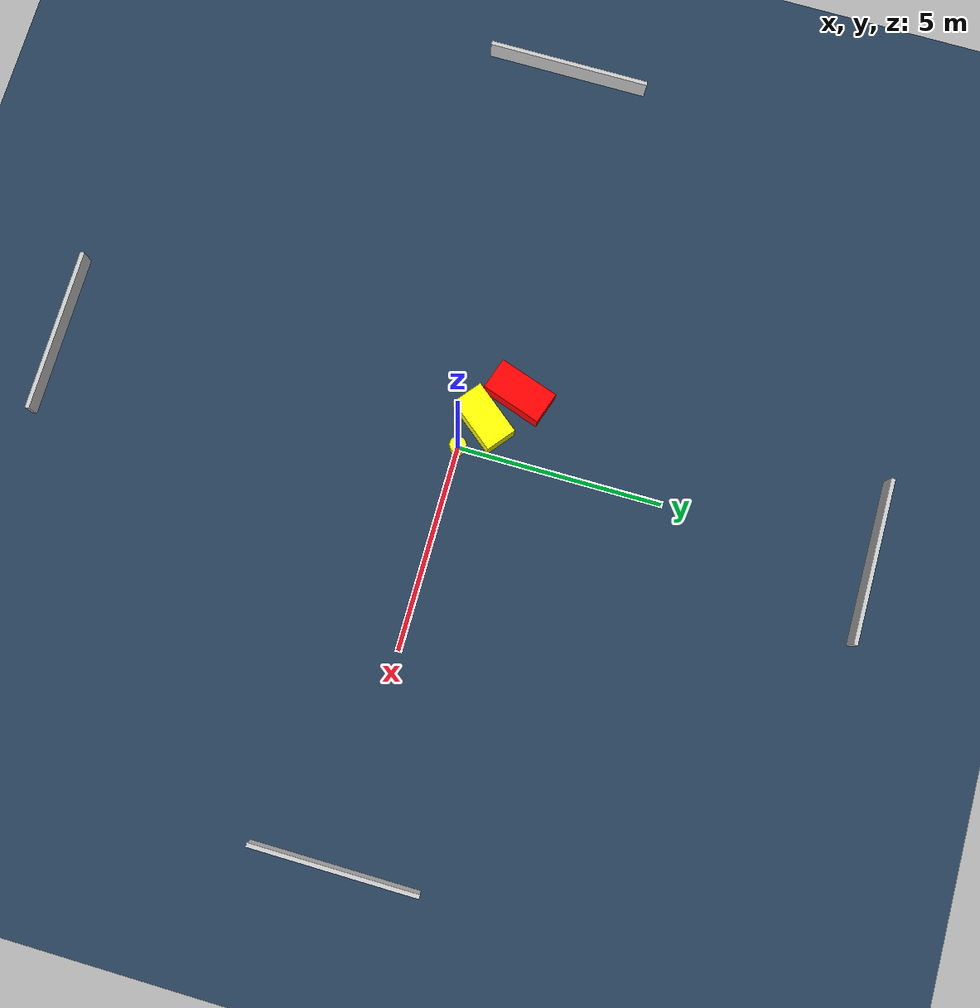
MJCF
<?xml version="1.0" ?>
<mujoco model="generated_environment">
  <option timestep="0.01" integrator="RK4" cone="elliptic"/>
  <default>
    <geom density="1"/>
  </default>
  <asset>
    <texture builtin="gradient" height="3072" name="skybox" rgb1="0.3 0.5 0.7" rgb2="0 0 0" type="skybox" width="512"/>
    <texture builtin="checker" height="300" name="groundplane" rgb1="0.2 0.3 0.4" rgb2="0.1 0.2 0.3" type="2d" width="300"/>
    <material name="groundplane" reflectance="0.2" texrepeat="5 5" texture="groundplane"/>
  </asset>
  <worldbody>
    <light dir="0 0 -1" directional="true" pos="0 0 1.5"/>
    <geom condim="3" friction="0.5 0.005 0.001" material="groundplane" name="floor" pos="0 0 0" size="0 0 0.05" type="plane"/>
    <body name="walls">
      <geom name="wall_1" condim="4" pos="-10.0 0.0 0.3" rgba="0.800000011920929 0.800000011920929 0.800000011920929 1.0" size="0.05 2.0 0.3" type="box"/>
      <geom name="wall_2" condim="4" pos="10.0 0.0 0.3" rgba="0.800000011920929 0.800000011920929 0.800000011920929 1.0" size="0.05 2.0 0.3" type="box"/>
      <geom name="wall_3" condim="4" pos="0.0 -10.0 0.3" rgba="0.800000011920929 0.800000011920929 0.800000011920929 1.0" size="2.0 0.05 0.3" type="box"/>
      <geom name="wall_4" condim="4" pos="0.0 10.0 0.3" rgba="0.800000011920929 0.800000011920929 0.800000011920929 1.0" size="2.0 0.05 0.3" type="box"/>
    </body>
    <body name="robot">
      <joint name="joint_x" type="slide" pos="0 0 0" axis="1 0 0"/>
      <joint name="joint_y" type="slide" pos="0 0 0" axis="0 1 0"/>
      <geom name="robot" type="cylinder" pos="0.0 0.0 0.2" size="0.2 0.2 0.0" mass="5.0" friction="1.0 0.005 0.0001" condim="4" rgba="1.0 1.0 0.0 1.0"/>
    </body>
    <body name="obstacle_1_movable">
      <geom name="obstacle_1_movable" condim="4" pos="-0.7871538302211187 0.41454802347652475 0.3" euler="0 0 231.24254812839433" friction="0.0 0.005 0.001" rgba="1.0 1.0 0.0 1.0" size="0.7002194038478697 0.3912545402312426 0.3" type="box" mass="0.1"/>
      <joint type="free"/>
    </body>
    <body name="obstacle_2_static">
      <geom name="obstacle_2_static" condim="4" pos="-1.6179853304810425 1.0636788270965323 0.3" euler="0 0 251.3151260589488" friction="0.0 0.005 0.001" rgba="1.0 0.0 0.0 1.0" size="0.7541665512633482 0.39659886486885343 0.3" type="box"/>
    </body>
  </worldbody>
  <actuator>
    <motor name="actuator_x" joint="joint_x" gear="1" ctrlrange="-1 1"/>
    <motor name="actuator_y" joint="joint_y" gear="1" ctrlrange="-1 1"/>
  </actuator>
</mujoco>
